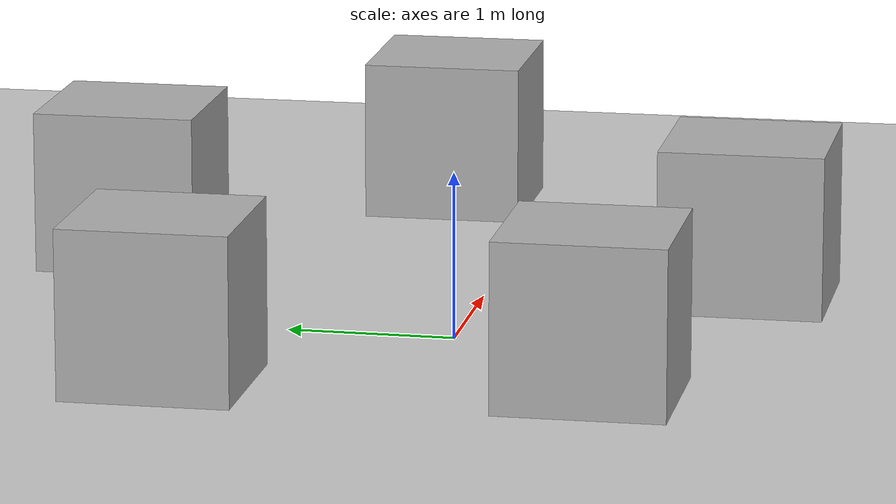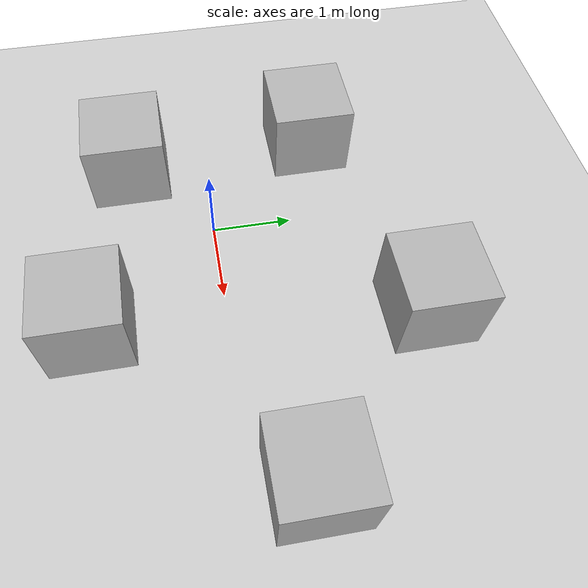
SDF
<sdf version='1.10'>
  <world name='empty'>
    <physics name='1ms' type='ignored'>
      <max_step_size>0.001</max_step_size>
      <real_time_factor>1</real_time_factor>
      <real_time_update_rate>1000</real_time_update_rate>
    </physics>
    <plugin name='gz::sim::systems::Physics' filename='gz-sim-physics-system'/>
    <plugin name='gz::sim::systems::UserCommands' filename='gz-sim-user-commands-system'/>
    <plugin name='gz::sim::systems::SceneBroadcaster' filename='gz-sim-scene-broadcaster-system'/>
    <plugin name='gz::sim::systems::Contact' filename='gz-sim-contact-system'/>
    <plugin name="gz::sim::systems::Sensors" filename="gz-sim-sensors-system" />
    <gravity>0 0 -9.8000000000000007</gravity>
    <magnetic_field>5.5644999999999998e-06 2.2875799999999999e-05 -4.2388400000000002e-05</magnetic_field>
    <atmosphere type='adiabatic'/>
    <scene>
      <ambient>0.400000006 0.400000006 0.400000006 1</ambient>
      <background>0.699999988 0.699999988 0.699999988 1</background>
      <shadows>true</shadows>
    </scene>
    <model name='ground_plane'>
      <static>true</static>
      <link name='link'>
        <collision name='collision'>
          <geometry>
            <plane>
              <normal>0 0 1</normal>
              <size>100 100</size>
            </plane>
          </geometry>
          <surface>
            <friction>
              <ode/>
            </friction>
            <bounce/>
            <contact/>
          </surface>
        </collision>
        <visual name='visual'>
          <geometry>
            <plane>
              <normal>0 0 1</normal>
              <size>100 100</size>
            </plane>
          </geometry>
          <material>
            <ambient>0.800000012 0.800000012 0.800000012 1</ambient>
            <diffuse>0.800000012 0.800000012 0.800000012 1</diffuse>
            <specular>0.800000012 0.800000012 0.800000012 1</specular>
          </material>
        </visual>
        <pose>0 0 0 0 0 0</pose>
        <inertial>
          <pose>0 0 0 0 0 0</pose>
          <mass>1</mass>
          <inertia>
            <ixx>1</ixx>
            <ixy>0</ixy>
            <ixz>0</ixz>
            <iyy>1</iyy>
            <iyz>0</iyz>
            <izz>1</izz>
          </inertia>
        </inertial>
        <enable_wind>false</enable_wind>
      </link>
      <pose>0 0 0 0 0 0</pose>
      <self_collide>false</self_collide>
    </model>
    <model name='box'>
      <pose>1.6047357546354162 2.339106501283867 0.5 0 0 0</pose>
      <link name='box_link'>
        <inertial>
          <inertia>
            <ixx>0.16666</ixx>
            <ixy>0</ixy>
            <ixz>0</ixz>
            <iyy>0.16666</iyy>
            <iyz>0</iyz>
            <izz>0.16666</izz>
          </inertia>
          <mass>1</mass>
          <pose>0 0 0 0 0 0</pose>
        </inertial>
        <collision name='box_collision'>
          <geometry>
            <box>
              <size>1 1 1</size>
            </box>
          </geometry>
          <surface>
            <friction>
              <ode/>
            </friction>
            <bounce/>
            <contact/>
          </surface>
        </collision>
        <visual name='box_visual'>
          <geometry>
            <box>
              <size>1 1 1</size>
            </box>
          </geometry>
          <material>
            <ambient>0.300000012 0.300000012 0.300000012 1</ambient>
            <diffuse>0.699999988 0.699999988 0.699999988 1</diffuse>
            <specular>1 1 1 1</specular>
          </material>
        </visual>
        <pose>0 0 0 0 0 0</pose>
        <enable_wind>false</enable_wind>
      </link>
      <static>false</static>
      <self_collide>false</self_collide>
    </model>
    <model name='box_0'>
      <pose>3.4101415607513061 0.61381387687071176 0.5 0 0 0</pose>
      <link name='box_link'>
        <inertial>
          <inertia>
            <ixx>0.16666</ixx>
            <ixy>0</ixy>
            <ixz>0</ixz>
            <iyy>0.16666</iyy>
            <iyz>0</iyz>
            <izz>0.16666</izz>
          </inertia>
          <mass>1</mass>
          <pose>0 0 0 0 0 0</pose>
        </inertial>
        <collision name='box_collision'>
          <geometry>
            <box>
              <size>1 1 1</size>
            </box>
          </geometry>
          <surface>
            <friction>
              <ode/>
            </friction>
            <bounce/>
            <contact/>
          </surface>
        </collision>
        <visual name='box_visual'>
          <geometry>
            <box>
              <size>1 1 1</size>
            </box>
          </geometry>
          <material>
            <ambient>0.300000012 0.300000012 0.300000012 1</ambient>
            <diffuse>0.699999988 0.699999988 0.699999988 1</diffuse>
            <specular>1 1 1 1</specular>
          </material>
        </visual>
        <pose>0 0 0 0 0 0</pose>
        <enable_wind>false</enable_wind>
      </link>
      <static>false</static>
      <self_collide>false</self_collide>
    </model>
    <model name='box_1'>
      <pose>1.2558027150666344 -1.5933134539926985 0.5 0 0 0</pose>
      <link name='box_link'>
        <inertial>
          <inertia>
            <ixx>0.16666</ixx>
            <ixy>0</ixy>
            <ixz>0</ixz>
            <iyy>0.16666</iyy>
            <iyz>0</iyz>
            <izz>0.16666</izz>
          </inertia>
          <mass>1</mass>
          <pose>0 0 0 0 0 0</pose>
        </inertial>
        <collision name='box_collision'>
          <geometry>
            <box>
              <size>1 1 1</size>
            </box>
          </geometry>
          <surface>
            <friction>
              <ode/>
            </friction>
            <bounce/>
            <contact/>
          </surface>
        </collision>
        <visual name='box_visual'>
          <geometry>
            <box>
              <size>1 1 1</size>
            </box>
          </geometry>
          <material>
            <ambient>0.300000012 0.300000012 0.300000012 1</ambient>
            <diffuse>0.699999988 0.699999988 0.699999988 1</diffuse>
            <specular>1 1 1 1</specular>
          </material>
        </visual>
        <pose>0 0 0 0 0 0</pose>
        <enable_wind>false</enable_wind>
      </link>
      <static>false</static>
      <self_collide>false</self_collide>
    </model>
    <model name='box_2'>
      <pose>-1.2795236613118233 1.4547066048086259 0.5 0 0 0</pose>
      <link name='box_link'>
        <inertial>
          <inertia>
            <ixx>0.16666</ixx>
            <ixy>0</ixy>
            <ixz>0</ixz>
            <iyy>0.16666</iyy>
            <iyz>0</iyz>
            <izz>0.16666</izz>
          </inertia>
          <mass>1</mass>
          <pose>0 0 0 0 0 0</pose>
        </inertial>
        <collision name='box_collision'>
          <geometry>
            <box>
              <size>1 1 1</size>
            </box>
          </geometry>
          <surface>
            <friction>
              <ode/>
            </friction>
            <bounce/>
            <contact/>
          </surface>
        </collision>
        <visual name='box_visual'>
          <geometry>
            <box>
              <size>1 1 1</size>
            </box>
          </geometry>
          <material>
            <ambient>0.300000012 0.300000012 0.300000012 1</ambient>
            <diffuse>0.699999988 0.699999988 0.699999988 1</diffuse>
            <specular>1 1 1 1</specular>
          </material>
        </visual>
        <pose>0 0 0 0 0 0</pose>
        <enable_wind>false</enable_wind>
      </link>
      <static>false</static>
      <self_collide>false</self_collide>
    </model>
    <model name='box_3'>
      <pose>-1.1281119677967268 -0.99314938245576101 0.5 0 0 0</pose>
      <link name='box_link'>
        <inertial>
          <inertia>
            <ixx>0.16666</ixx>
            <ixy>0</ixy>
            <ixz>0</ixz>
            <iyy>0.16666</iyy>
            <iyz>0</iyz>
            <izz>0.16666</izz>
          </inertia>
          <mass>1</mass>
          <pose>0 0 0 0 0 0</pose>
        </inertial>
        <collision name='box_collision'>
          <geometry>
            <box>
              <size>1 1 1</size>
            </box>
          </geometry>
          <surface>
            <friction>
              <ode/>
            </friction>
            <bounce/>
            <contact/>
          </surface>
        </collision>
        <visual name='box_visual'>
          <geometry>
            <box>
              <size>1 1 1</size>
            </box>
          </geometry>
          <material>
            <ambient>0.300000012 0.300000012 0.300000012 1</ambient>
            <diffuse>0.699999988 0.699999988 0.699999988 1</diffuse>
            <specular>1 1 1 1</specular>
          </material>
        </visual>
        <pose>0 0 0 0 0 0</pose>
        <enable_wind>false</enable_wind>
      </link>
      <static>false</static>
      <self_collide>false</self_collide>
    </model>
    <light name='sun' type='directional'>
      <pose>0 0 10 0 0 0</pose>
      <cast_shadows>true</cast_shadows>
      <intensity>1</intensity>
      <direction>-0.5 0.10000000000000001 -0.90000000000000002</direction>
      <diffuse>0.800000012 0.800000012 0.800000012 1</diffuse>
      <specular>0.200000003 0.200000003 0.200000003 1</specular>
      <attenuation>
        <range>1000</range>
        <linear>0.01</linear>
        <constant>0.90000000000000002</constant>
        <quadratic>0.001</quadratic>
      </attenuation>
      <spot>
        <inner_angle>0</inner_angle>
        <outer_angle>0</outer_angle>
        <falloff>0</falloff>
      </spot>
    </light>
  </world>
</sdf>
